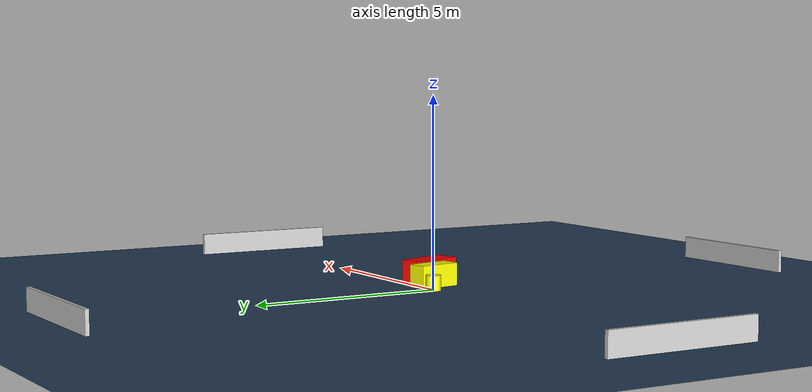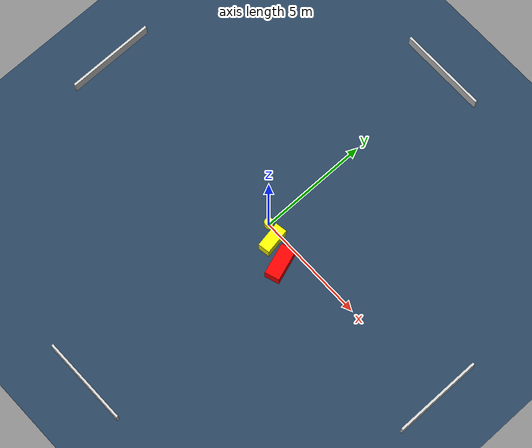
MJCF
<?xml version="1.0" ?>
<mujoco model="generated_environment">
  <option timestep="0.01" integrator="RK4" cone="elliptic"/>
  <default>
    <geom density="1"/>
  </default>
  <asset>
    <texture builtin="gradient" height="3072" name="skybox" rgb1="0.3 0.5 0.7" rgb2="0 0 0" type="skybox" width="512"/>
    <texture builtin="checker" height="300" name="groundplane" rgb1="0.2 0.3 0.4" rgb2="0.1 0.2 0.3" type="2d" width="300"/>
    <material name="groundplane" reflectance="0.2" texrepeat="5 5" texture="groundplane"/>
  </asset>
  <worldbody>
    <light dir="0 0 -1" directional="true" pos="0 0 1.5"/>
    <geom condim="3" friction="0.5 0.005 0.001" material="groundplane" name="floor" pos="0 0 0" size="0 0 0.05" type="plane"/>
    <body name="walls">
      <geom name="wall_1" condim="4" pos="-10.0 0.0 0.3" rgba="0.800000011920929 0.800000011920929 0.800000011920929 1.0" size="0.05 2.0 0.3" type="box"/>
      <geom name="wall_2" condim="4" pos="10.0 0.0 0.3" rgba="0.800000011920929 0.800000011920929 0.800000011920929 1.0" size="0.05 2.0 0.3" type="box"/>
      <geom name="wall_3" condim="4" pos="0.0 -10.0 0.3" rgba="0.800000011920929 0.800000011920929 0.800000011920929 1.0" size="2.0 0.05 0.3" type="box"/>
      <geom name="wall_4" condim="4" pos="0.0 10.0 0.3" rgba="0.800000011920929 0.800000011920929 0.800000011920929 1.0" size="2.0 0.05 0.3" type="box"/>
    </body>
    <body name="robot">
      <joint name="joint_x" type="slide" pos="0 0 0" axis="1 0 0"/>
      <joint name="joint_y" type="slide" pos="0 0 0" axis="0 1 0"/>
      <geom name="robot" type="cylinder" pos="0.0 0.0 0.2" size="0.2 0.2 0.0" mass="5.0" friction="1.0 0.005 0.0001" condim="4" rgba="1.0 1.0 0.0 1.0"/>
    </body>
    <body name="obstacle_1_movable">
      <geom name="obstacle_1_movable" condim="4" pos="0.6491713777128092 -0.39954962165426916 0.3" euler="0 0 189.34823989098768" friction="0.0 0.005 0.001" rgba="1.0 1.0 0.0 1.0" size="0.26685390274504145 0.5870373630231742 0.3" type="box" mass="0.1"/>
      <joint type="free"/>
    </body>
    <body name="obstacle_2_static">
      <geom name="obstacle_2_static" condim="4" pos="1.6220863542447512 -0.8550067241793525 0.3" euler="0 0 198.47567309208105" friction="0.0 0.005 0.001" rgba="1.0 0.0 0.0 1.0" size="0.3305535468292611 0.7138327406329585 0.3" type="box"/>
    </body>
  </worldbody>
  <actuator>
    <motor name="actuator_x" joint="joint_x" gear="1" ctrlrange="-1 1"/>
    <motor name="actuator_y" joint="joint_y" gear="1" ctrlrange="-1 1"/>
  </actuator>
</mujoco>
